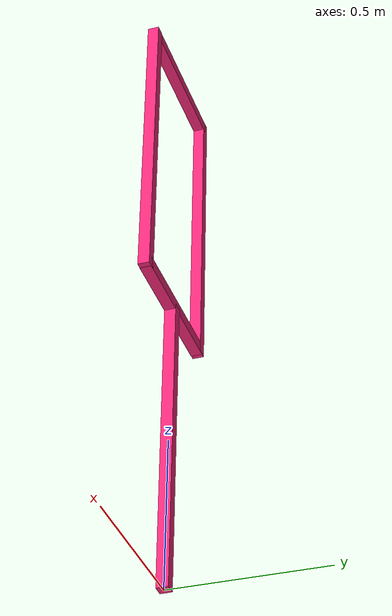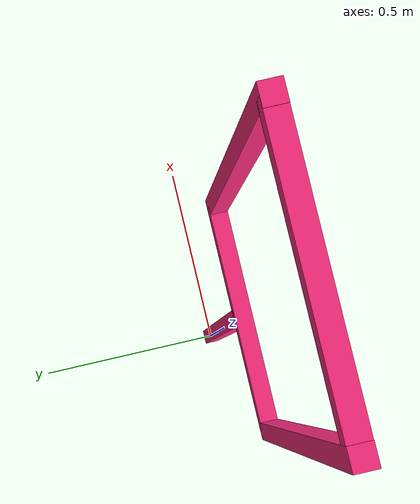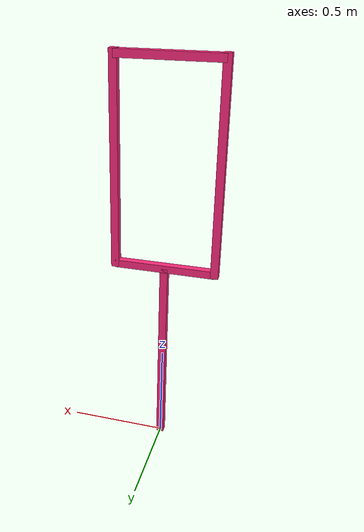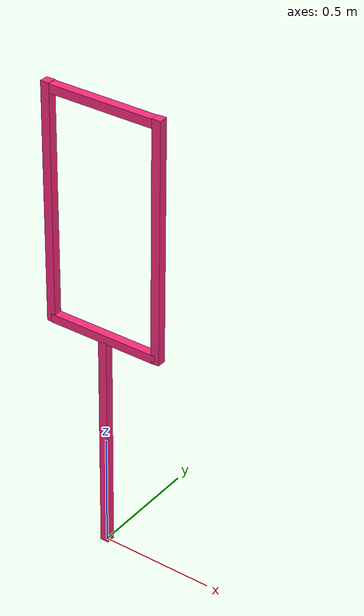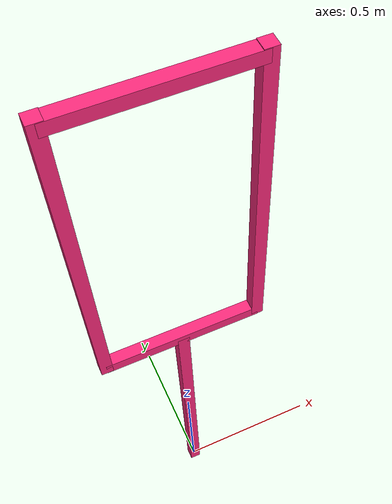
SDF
<?xml version="1.0" encoding="UTF-8"?>
<sdf version="1.6">
  <model name="small_gate">
    <!-- Rod -->
    <link name="rod">
      <pose>0 0 0.5 0 0 0</pose>
      <inertial>
        <mass>1</mass>
        <inertia>
          <ixx>0.166667</ixx>
          <ixy>0</ixy>
          <ixz>0</ixz>
          <iyy>0.166667</iyy>
          <iyz>0</iyz>
          <izz>0.166667</izz>
        </inertia>
        <pose frame="">0 0 0 0 0 0</pose>
      </inertial>
      <self_collide>0</self_collide>
      <kinematic>0</kinematic>
      <gravity>1</gravity>
      <visual name="visual">
        <geometry>
          <box>
            <size>0.0381 0.0381 1</size>
          </box>
        </geometry>
        <material>
          <shader type="vertex">
            <normal_map>__default__</normal_map>
          </shader>
          <ambient>0.978 0.164 0.484 1</ambient>
          <diffuse>0.978 0.164 0.484 1</diffuse>
          <specular>0.01 0.01 0.01 1</specular>
          <emissive>0 0 0 1</emissive>
        </material>
        <pose frame="">0 0 0 0 0 0</pose>
        <transparency>0</transparency>
        <cast_shadows>1</cast_shadows>
      </visual>
      <collision name="collision">
        <laser_retro>0</laser_retro>
        <max_contacts>10</max_contacts>
        <pose frame="">0 0 0 0 0 0</pose>
        <geometry>
          <box>
            <size>0.0381 0.0381 1</size>
          </box>
        </geometry>
        <surface>
          <friction>
            <ode>
              <mu>1</mu>
              <mu2>1</mu2>
              <fdir1>0 0 0</fdir1>
              <slip1>0</slip1>
              <slip2>0</slip2>
            </ode>
            <torsional>
              <coefficient>1</coefficient>
              <patch_radius>0</patch_radius>
              <surface_radius>0</surface_radius>
              <use_patch_radius>1</use_patch_radius>
              <ode>
                <slip>0</slip>
              </ode>
            </torsional>
          </friction>
          <bounce>
            <restitution_coefficient>0</restitution_coefficient>
            <threshold>1e+06</threshold>
          </bounce>
          <contact>
            <collide_without_contact>0</collide_without_contact>
            <collide_without_contact_bitmask>1</collide_without_contact_bitmask>
            <collide_bitmask>1</collide_bitmask>
            <ode>
              <soft_cfm>0</soft_cfm>
              <soft_erp>0.2</soft_erp>
              <kp>1e+13</kp>
              <kd>1</kd>
              <max_vel>0.01</max_vel>
              <min_depth>0</min_depth>
            </ode>
            <bullet>
              <split_impulse>1</split_impulse>
              <split_impulse_penetration_threshold>-0.01</split_impulse_penetration_threshold>
              <soft_cfm>0</soft_cfm>
              <soft_erp>0.2</soft_erp>
              <kp>1e+13</kp>
              <kd>1</kd>
            </bullet>
          </contact>
        </surface>
      </collision>
    </link>
    <!-- Top edge -->
    <link name="top_edge">
      <pose frame="">0 0 2 0 0 0</pose>
      <inertial>
        <mass>1</mass>
        <inertia>
          <ixx>0.166667</ixx>
          <ixy>0</ixy>
          <ixz>0</ixz>
          <iyy>0.166667</iyy>
          <iyz>0</iyz>
          <izz>0.166667</izz>
        </inertia>
        <pose frame="">0 0 0 0 0 0</pose>
      </inertial>
      <self_collide>0</self_collide>
      <kinematic>0</kinematic>
      <gravity>1</gravity>
      <visual name="visual">
        <geometry>
          <box>
            <size>0.5 0.0381 0.0381</size>
          </box>
        </geometry>
        <material>
          <shader type="vertex">
            <normal_map>__default__</normal_map>
          </shader>
          <ambient>0.978 0.164 0.484 1</ambient>
          <diffuse>0.978 0.164 0.484 1</diffuse>
          <specular>0.01 0.01 0.01 1</specular>
          <emissive>0 0 0 1</emissive>
        </material>
        <pose frame="">0 0 0 0 0 0</pose>
        <transparency>0</transparency>
        <cast_shadows>1</cast_shadows>
      </visual>
      <collision name="collision">
        <laser_retro>0</laser_retro>
        <max_contacts>10</max_contacts>
        <pose frame="">0 0 0 0 0 0</pose>
        <geometry>
          <box>
            <size>0.5 0.0381 0.0381</size>
          </box>
        </geometry>
        <surface>
          <friction>
            <ode>
              <mu>1</mu>
              <mu2>1</mu2>
              <fdir1>0 0 0</fdir1>
              <slip1>0</slip1>
              <slip2>0</slip2>
            </ode>
            <torsional>
              <coefficient>1</coefficient>
              <patch_radius>0</patch_radius>
              <surface_radius>0</surface_radius>
              <use_patch_radius>1</use_patch_radius>
              <ode>
                <slip>0</slip>
              </ode>
            </torsional>
          </friction>
          <bounce>
            <restitution_coefficient>0</restitution_coefficient>
            <threshold>1e+06</threshold>
          </bounce>
          <contact>
            <collide_without_contact>0</collide_without_contact>
            <collide_without_contact_bitmask>1</collide_without_contact_bitmask>
            <collide_bitmask>1</collide_bitmask>
            <ode>
              <soft_cfm>0</soft_cfm>
              <soft_erp>0.2</soft_erp>
              <kp>1e+13</kp>
              <kd>1</kd>
              <max_vel>0.01</max_vel>
              <min_depth>0</min_depth>
            </ode>
            <bullet>
              <split_impulse>1</split_impulse>
              <split_impulse_penetration_threshold>-0.01</split_impulse_penetration_threshold>
              <soft_cfm>0</soft_cfm>
              <soft_erp>0.2</soft_erp>
              <kp>1e+13</kp>
              <kd>1</kd>
            </bullet>
          </contact>
        </surface>
      </collision>
    </link>
    <!-- Bottom edge -->
    <link name="bottom_edge">
      <pose frame="">0 0 1 0 0 0</pose>
      <inertial>
        <mass>1</mass>
        <inertia>
          <ixx>0.166667</ixx>
          <ixy>0</ixy>
          <ixz>0</ixz>
          <iyy>0.166667</iyy>
          <iyz>0</iyz>
          <izz>0.166667</izz>
        </inertia>
        <pose frame="">0 0 0 0 0 0</pose>
      </inertial>
      <self_collide>0</self_collide>
      <kinematic>0</kinematic>
      <gravity>1</gravity>
      <visual name="visual">
        <geometry>
          <box>
            <size>0.5 0.0381 0.0381</size>
          </box>
        </geometry>
        <material>
          <shader type="vertex">
            <normal_map>__default__</normal_map>
          </shader>
          <ambient>0.978 0.164 0.484 1</ambient>
          <diffuse>0.978 0.164 0.484 1</diffuse>
          <specular>0.01 0.01 0.01 1</specular>
          <emissive>0 0 0 1</emissive>
        </material>
        <pose frame="">0 0 0 0 0 0</pose>
        <transparency>0</transparency>
        <cast_shadows>1</cast_shadows>
      </visual>
      <collision name="collision">
        <laser_retro>0</laser_retro>
        <max_contacts>10</max_contacts>
        <pose frame="">0 0 0 0 0 0</pose>
        <geometry>
          <box>
            <size>0.5 0.0381 0.0381</size>
          </box>
        </geometry>
        <surface>
          <friction>
            <ode>
              <mu>1</mu>
              <mu2>1</mu2>
              <fdir1>0 0 0</fdir1>
              <slip1>0</slip1>
              <slip2>0</slip2>
            </ode>
            <torsional>
              <coefficient>1</coefficient>
              <patch_radius>0</patch_radius>
              <surface_radius>0</surface_radius>
              <use_patch_radius>1</use_patch_radius>
              <ode>
                <slip>0</slip>
              </ode>
            </torsional>
          </friction>
          <bounce>
            <restitution_coefficient>0</restitution_coefficient>
            <threshold>1e+06</threshold>
          </bounce>
          <contact>
            <collide_without_contact>0</collide_without_contact>
            <collide_without_contact_bitmask>1</collide_without_contact_bitmask>
            <collide_bitmask>1</collide_bitmask>
            <ode>
              <soft_cfm>0</soft_cfm>
              <soft_erp>0.2</soft_erp>
              <kp>1e+13</kp>
              <kd>1</kd>
              <max_vel>0.01</max_vel>
              <min_depth>0</min_depth>
            </ode>
            <bullet>
              <split_impulse>1</split_impulse>
              <split_impulse_penetration_threshold>-0.01</split_impulse_penetration_threshold>
              <soft_cfm>0</soft_cfm>
              <soft_erp>0.2</soft_erp>
              <kp>1e+13</kp>
              <kd>1</kd>
            </bullet>
          </contact>
        </surface>
      </collision>
    </link>
    <!-- left edge -->
    <link name="left_edge">
      <pose frame="">-0.25 0 1.502 0 0 0</pose>
      <inertial>
        <mass>1</mass>
        <inertia>
          <ixx>0.166667</ixx>
          <ixy>0</ixy>
          <ixz>0</ixz>
          <iyy>0.166667</iyy>
          <iyz>0</iyz>
          <izz>0.166667</izz>
        </inertia>
        <pose frame="">0 0 0 0 0 0</pose>
      </inertial>
      <self_collide>0</self_collide>
      <kinematic>0</kinematic>
      <gravity>1</gravity>
      <visual name="visual">
        <geometry>
          <box>
            <size>0.0381 0.0381 1.0381</size>
          </box>
        </geometry>
        <material>
          <shader type="vertex">
            <normal_map>__default__</normal_map>
          </shader>
          <ambient>0.978 0.164 0.484 1</ambient>
          <diffuse>0.978 0.164 0.484 1</diffuse>
          <specular>0.01 0.01 0.01 1</specular>
          <emissive>0 0 0 1</emissive>
        </material>
        <pose frame="">0 0 0 0 0 0</pose>
        <transparency>0</transparency>
        <cast_shadows>1</cast_shadows>
      </visual>
      <collision name="collision">
        <laser_retro>0</laser_retro>
        <max_contacts>10</max_contacts>
        <pose frame="">0 0 0 0 0 0</pose>
        <geometry>
          <box>
            <size>0.0381 0.0381 1.0381</size>
          </box>
        </geometry>
        <surface>
          <friction>
            <ode>
              <mu>1</mu>
              <mu2>1</mu2>
              <fdir1>0 0 0</fdir1>
              <slip1>0</slip1>
              <slip2>0</slip2>
            </ode>
            <torsional>
              <coefficient>1</coefficient>
              <patch_radius>0</patch_radius>
              <surface_radius>0</surface_radius>
              <use_patch_radius>1</use_patch_radius>
              <ode>
                <slip>0</slip>
              </ode>
            </torsional>
          </friction>
          <bounce>
            <restitution_coefficient>0</restitution_coefficient>
            <threshold>1e+06</threshold>
          </bounce>
          <contact>
            <collide_without_contact>0</collide_without_contact>
            <collide_without_contact_bitmask>1</collide_without_contact_bitmask>
            <collide_bitmask>1</collide_bitmask>
            <ode>
              <soft_cfm>0</soft_cfm>
              <soft_erp>0.2</soft_erp>
              <kp>1e+13</kp>
              <kd>1</kd>
              <max_vel>0.01</max_vel>
              <min_depth>0</min_depth>
            </ode>
            <bullet>
              <split_impulse>1</split_impulse>
              <split_impulse_penetration_threshold>-0.01</split_impulse_penetration_threshold>
              <soft_cfm>0</soft_cfm>
              <soft_erp>0.2</soft_erp>
              <kp>1e+13</kp>
              <kd>1</kd>
            </bullet>
          </contact>
        </surface>
      </collision>
    </link>
    <!-- Right edge -->
    <link name="right_edge">
      <pose frame="">0.25 0 1.502 0 0 0</pose>
      <inertial>
        <mass>1</mass>
        <inertia>
          <ixx>0.166667</ixx>
          <ixy>0</ixy>
          <ixz>0</ixz>
          <iyy>0.166667</iyy>
          <iyz>0</iyz>
          <izz>0.166667</izz>
        </inertia>
        <pose frame="">0 0 0 0 0 0</pose>
      </inertial>
      <self_collide>0</self_collide>
      <kinematic>0</kinematic>
      <gravity>1</gravity>
      <visual name="visual">
        <geometry>
          <box>
            <size>0.0381 0.0381 1.0381</size>
          </box>
        </geometry>
        <material>
          <shader type="vertex">
            <normal_map>__default__</normal_map>
          </shader>
          <ambient>0.978 0.164 0.484 1</ambient>
          <diffuse>0.978 0.164 0.484 1</diffuse>
          <specular>0.01 0.01 0.01 1</specular>
          <emissive>0 0 0 1</emissive>
        </material>
        <pose frame="">0 0 0 0 0 0</pose>
        <transparency>0</transparency>
        <cast_shadows>1</cast_shadows>
      </visual>
      <collision name="collision">
        <laser_retro>0</laser_retro>
        <max_contacts>10</max_contacts>
        <pose frame="">0 0 0 0 0 0</pose>
        <geometry>
          <box>
            <size>0.0381 0.0381 1.0381</size>
          </box>
        </geometry>
        <surface>
          <friction>
            <ode>
              <mu>1</mu>
              <mu2>1</mu2>
              <fdir1>0 0 0</fdir1>
              <slip1>0</slip1>
              <slip2>0</slip2>
            </ode>
            <torsional>
              <coefficient>1</coefficient>
              <patch_radius>0</patch_radius>
              <surface_radius>0</surface_radius>
              <use_patch_radius>1</use_patch_radius>
              <ode>
                <slip>0</slip>
              </ode>
            </torsional>
          </friction>
          <bounce>
            <restitution_coefficient>0</restitution_coefficient>
            <threshold>1e+06</threshold>
          </bounce>
          <contact>
            <collide_without_contact>0</collide_without_contact>
            <collide_without_contact_bitmask>1</collide_without_contact_bitmask>
            <collide_bitmask>1</collide_bitmask>
            <ode>
              <soft_cfm>0</soft_cfm>
              <soft_erp>0.2</soft_erp>
              <kp>1e+13</kp>
              <kd>1</kd>
              <max_vel>0.01</max_vel>
              <min_depth>0</min_depth>
            </ode>
            <bullet>
              <split_impulse>1</split_impulse>
              <split_impulse_penetration_threshold>-0.01</split_impulse_penetration_threshold>
              <soft_cfm>0</soft_cfm>
              <soft_erp>0.2</soft_erp>
              <kp>1e+13</kp>
              <kd>1</kd>
            </bullet>
          </contact>
        </surface>
      </collision>
    </link>
    <static>1</static>
    <allow_auto_disable>1</allow_auto_disable>
  </model>
</sdf>
